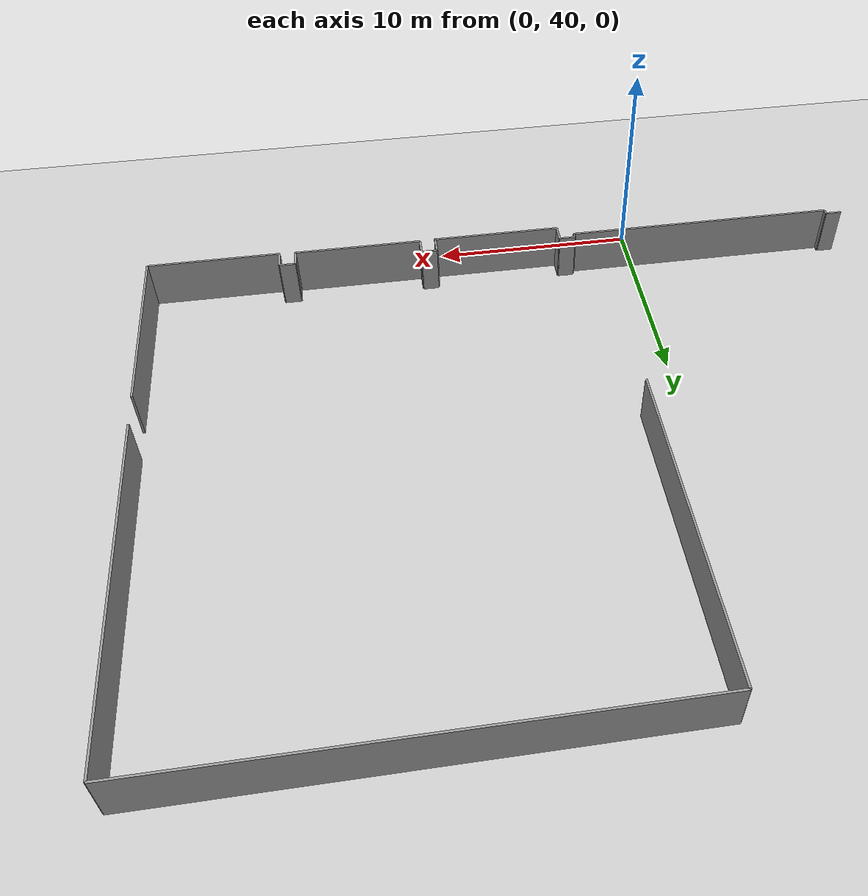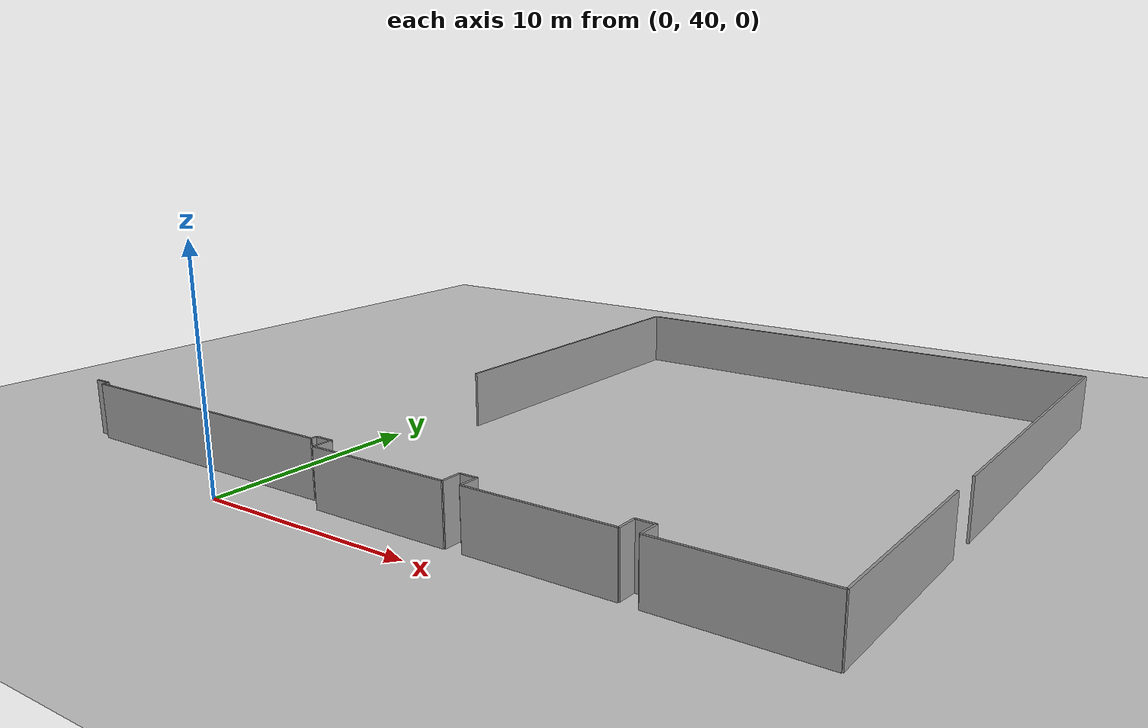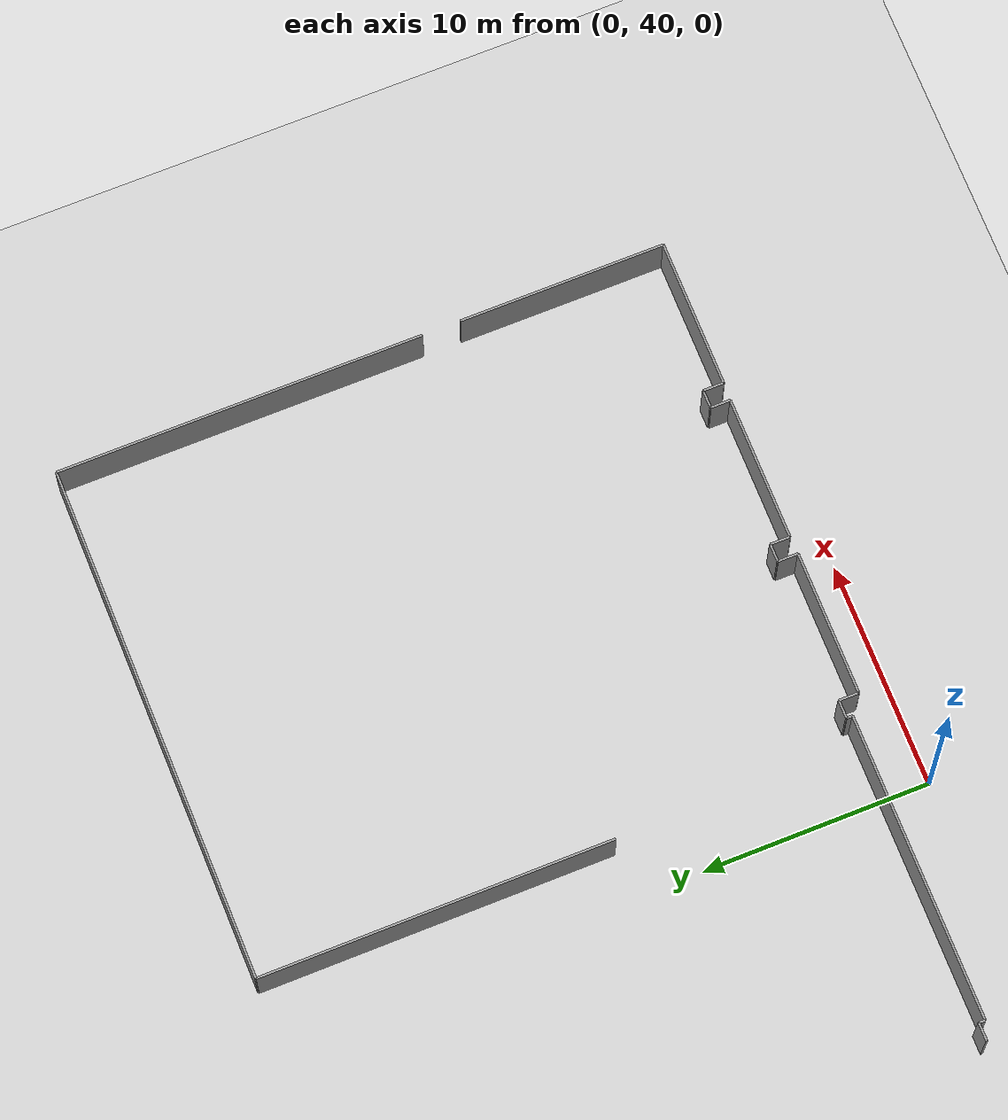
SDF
<sdf version="1.6">
 <world name="default">
  <model name="ground_plane">
   <static>1</static>
   <link name="link">
    <collision name="collision">
     <geometry><plane><normal>0 0 1</normal><size>100 100</size></plane></geometry>
     <surface><friction><ode><mu>100</mu><mu2>50</mu2></ode></friction></surface>
    </collision>
    <visual name="visual">
     <cast_shadows>0</cast_shadows>
     <geometry><plane><normal>0 0 1</normal><size>100 100</size></plane></geometry>
     <material>
      <script><uri>file://media/materials/scripts/gazebo.material</uri><name>Gazebo/Grey</name></script>
     </material>
    </visual>
   </link>
  </model>
  <model name="0510035518_A_40_1_101">
   <static>1</static>
   <link name="Wall_64">
    <collision name="Wall_64_Collision">
     <geometry><box><size>15.5447443633 0.1 2.5</size></box></geometry>
     <pose>7.77237218164 0 1.25 0 0 0</pose>
    </collision>
    <visual name="Wall_64_Visual">
     <pose>7.77237218164 0 1.25 0 0 0</pose>
     <geometry><box><size>15.5447443633 0.1 2.5</size></box></geometry>
     <material>
      <script><uri>file://media/materials/scripts/gazebo.material</uri><name>Gazebo/Grey</name></script>
      <ambient>1 1 1 1</ambient>
     </material>
    </visual>
    <pose>118.848142267 -15.5447443633 0 0 0 1.57079632679</pose>
   </link>
   <link name="Wall_65">
    <collision name="Wall_65_Collision">
     <geometry><box><size>23.0084471261 0.1 2.5</size></box></geometry>
     <pose>11.504223563 0 1.25 0 0 0</pose>
    </collision>
    <visual name="Wall_65_Visual">
     <pose>11.504223563 0 1.25 0 0 0</pose>
     <geometry><box><size>23.0084471261 0.1 2.5</size></box></geometry>
     <material>
      <script><uri>file://media/materials/scripts/gazebo.material</uri><name>Gazebo/Grey</name></script>
      <ambient>1 1 1 1</ambient>
     </material>
    </visual>
    <pose>118.848142267 -0.0 0 0 0 0.0</pose>
   </link>
   <link name="Wall_66">
    <collision name="Wall_66_Collision">
     <geometry><box><size>16.2210225468 0.1 2.5</size></box></geometry>
     <pose>8.11051127342 0 1.25 0 0 0</pose>
    </collision>
    <visual name="Wall_66_Visual">
     <pose>8.11051127342 0 1.25 0 0 0</pose>
     <geometry><box><size>16.2210225468 0.1 2.5</size></box></geometry>
     <material>
      <script><uri>file://media/materials/scripts/gazebo.material</uri><name>Gazebo/Grey</name></script>
      <ambient>1 1 1 1</ambient>
     </material>
    </visual>
    <pose>141.856589393 -0.0 0 0 0 -1.57079632679</pose>
   </link>
   <link name="Wall_67">
    <collision name="Wall_67_Collision">
     <geometry><box><size>9.12848523341 0.1 2.5</size></box></geometry>
     <pose>4.5642426167 0 1.25 0 0 0</pose>
    </collision>
    <visual name="Wall_67_Visual">
     <pose>4.5642426167 0 1.25 0 0 0</pose>
     <geometry><box><size>9.12848523341 0.1 2.5</size></box></geometry>
     <material>
      <script><uri>file://media/materials/scripts/gazebo.material</uri><name>Gazebo/Grey</name></script>
      <ambient>1 1 1 1</ambient>
     </material>
    </visual>
    <pose>141.856589393 -17.9122261035 0 0 0 -1.57079632679</pose>
   </link>
   <link name="Wall_68">
    <collision name="Wall_68_Collision">
     <geometry><box><size>6.59663385202 0.1 2.5</size></box></geometry>
     <pose>3.29831692601 0 1.25 0 0 0</pose>
    </collision>
    <visual name="Wall_68_Visual">
     <pose>3.29831692601 0 1.25 0 0 0</pose>
     <geometry><box><size>6.59663385202 0.1 2.5</size></box></geometry>
     <material>
      <script><uri>file://media/materials/scripts/gazebo.material</uri><name>Gazebo/Grey</name></script>
      <ambient>1 1 1 1</ambient>
     </material>
    </visual>
    <pose>141.856589393 -27.0407113369 0 0 0 3.14159265359</pose>
   </link>
   <link name="Wall_69">
    <collision name="Wall_69_Collision">
     <geometry><box><size>0.911527469038 0.1 2.5</size></box></geometry>
     <pose>0.455763734519 0 1.25 0 0 0</pose>
    </collision>
    <visual name="Wall_69_Visual">
     <pose>0.455763734519 0 1.25 0 0 0</pose>
     <geometry><box><size>0.911527469038 0.1 2.5</size></box></geometry>
     <material>
      <script><uri>file://media/materials/scripts/gazebo.material</uri><name>Gazebo/Grey</name></script>
      <ambient>1 1 1 1</ambient>
     </material>
    </visual>
    <pose>135.259955541 -27.0407113369 0 0 0 1.57079632679</pose>
   </link>
   <link name="Wall_70">
    <collision name="Wall_70_Collision">
     <geometry><box><size>0.801778342331 0.1 2.5</size></box></geometry>
     <pose>0.400889171165 0 1.25 0 0 0</pose>
    </collision>
    <visual name="Wall_70_Visual">
     <pose>0.400889171165 0 1.25 0 0 0</pose>
     <geometry><box><size>0.801778342331 0.1 2.5</size></box></geometry>
     <material>
      <script><uri>file://media/materials/scripts/gazebo.material</uri><name>Gazebo/Grey</name></script>
      <ambient>1 1 1 1</ambient>
     </material>
    </visual>
    <pose>135.259955541 -26.1291838679 0 0 0 3.14159265359</pose>
   </link>
   <link name="Wall_71">
    <collision name="Wall_71_Collision">
     <geometry><box><size>0.878501111464 0.1 2.5</size></box></geometry>
     <pose>0.439250555732 0 1.25 0 0 0</pose>
    </collision>
    <visual name="Wall_71_Visual">
     <pose>0.439250555732 0 1.25 0 0 0</pose>
     <geometry><box><size>0.878501111464 0.1 2.5</size></box></geometry>
     <material>
      <script><uri>file://media/materials/scripts/gazebo.material</uri><name>Gazebo/Grey</name></script>
      <ambient>1 1 1 1</ambient>
     </material>
    </visual>
    <pose>134.458177199 -26.1291838679 0 0 0 -1.57079632679</pose>
   </link>
   <link name="Wall_72">
    <collision name="Wall_72_Collision">
     <geometry><box><size>6.40330263576 0.1 2.5</size></box></geometry>
     <pose>3.20165131788 0 1.25 0 0 0</pose>
    </collision>
    <visual name="Wall_72_Visual">
     <pose>3.20165131788 0 1.25 0 0 0</pose>
     <geometry><box><size>6.40330263576 0.1 2.5</size></box></geometry>
     <material>
      <script><uri>file://media/materials/scripts/gazebo.material</uri><name>Gazebo/Grey</name></script>
      <ambient>1 1 1 1</ambient>
     </material>
    </visual>
    <pose>134.458177199 -27.0076849794 0 0 0 3.14159265359</pose>
   </link>
   <link name="Wall_73">
    <collision name="Wall_73_Collision">
     <geometry><box><size>0.867577008574 0.1 2.5</size></box></geometry>
     <pose>0.433788504287 0 1.25 0 0 0</pose>
    </collision>
    <visual name="Wall_73_Visual">
     <pose>0.433788504287 0 1.25 0 0 0</pose>
     <geometry><box><size>0.867577008574 0.1 2.5</size></box></geometry>
     <material>
      <script><uri>file://media/materials/scripts/gazebo.material</uri><name>Gazebo/Grey</name></script>
      <ambient>1 1 1 1</ambient>
     </material>
    </visual>
    <pose>128.054874563 -27.0076849794 0 0 0 1.57079632679</pose>
   </link>
   <link name="Wall_74">
    <collision name="Wall_74_Collision">
     <geometry><box><size>0.790600190537 0.1 2.5</size></box></geometry>
     <pose>0.395300095268 0 1.25 0 0 0</pose>
    </collision>
    <visual name="Wall_74_Visual">
     <pose>0.395300095268 0 1.25 0 0 0</pose>
     <geometry><box><size>0.790600190537 0.1 2.5</size></box></geometry>
     <material>
      <script><uri>file://media/materials/scripts/gazebo.material</uri><name>Gazebo/Grey</name></script>
      <ambient>1 1 1 1</ambient>
     </material>
    </visual>
    <pose>128.054874563 -26.1401079708 0 0 0 3.14159265359</pose>
   </link>
   <link name="Wall_75">
    <collision name="Wall_75_Collision">
     <geometry><box><size>0.900603366148 0.1 2.5</size></box></geometry>
     <pose>0.450301683074 0 1.25 0 0 0</pose>
    </collision>
    <visual name="Wall_75_Visual">
     <pose>0.450301683074 0 1.25 0 0 0</pose>
     <geometry><box><size>0.900603366148 0.1 2.5</size></box></geometry>
     <material>
      <script><uri>file://media/materials/scripts/gazebo.material</uri><name>Gazebo/Grey</name></script>
      <ambient>1 1 1 1</ambient>
     </material>
    </visual>
    <pose>127.264274373 -26.1401079708 0 0 0 -1.57079632679</pose>
   </link>
   <link name="Wall_76">
    <collision name="Wall_76_Collision">
     <geometry><box><size>6.40152429343 0.1 2.5</size></box></geometry>
     <pose>3.20076214671 0 1.25 0 0 0</pose>
    </collision>
    <visual name="Wall_76_Visual">
     <pose>3.20076214671 0 1.25 0 0 0</pose>
     <geometry><box><size>6.40152429343 0.1 2.5</size></box></geometry>
     <material>
      <script><uri>file://media/materials/scripts/gazebo.material</uri><name>Gazebo/Grey</name></script>
      <ambient>1 1 1 1</ambient>
     </material>
    </visual>
    <pose>127.264274373 -27.0407113369 0 0 0 3.14159265359</pose>
   </link>
   <link name="Wall_77">
    <collision name="Wall_77_Collision">
     <geometry><box><size>0.87824706256 0.1 2.5</size></box></geometry>
     <pose>0.43912353128 0 1.25 0 0 0</pose>
    </collision>
    <visual name="Wall_77_Visual">
     <pose>0.43912353128 0 1.25 0 0 0</pose>
     <geometry><box><size>0.87824706256 0.1 2.5</size></box></geometry>
     <material>
      <script><uri>file://media/materials/scripts/gazebo.material</uri><name>Gazebo/Grey</name></script>
      <ambient>1 1 1 1</ambient>
     </material>
    </visual>
    <pose>120.862750079 -27.0407113369 0 0 0 1.57079632679</pose>
   </link>
   <link name="Wall_78">
    <collision name="Wall_78_Collision">
     <geometry><box><size>0.802032391235 0.1 2.5</size></box></geometry>
     <pose>0.401016195618 0 1.25 0 0 0</pose>
    </collision>
    <visual name="Wall_78_Visual">
     <pose>0.401016195618 0 1.25 0 0 0</pose>
     <geometry><box><size>0.802032391235 0.1 2.5</size></box></geometry>
     <material>
      <script><uri>file://media/materials/scripts/gazebo.material</uri><name>Gazebo/Grey</name></script>
      <ambient>1 1 1 1</ambient>
     </material>
    </visual>
    <pose>120.862750079 -26.1624642744 0 0 0 3.14159265359</pose>
   </link>
   <link name="Wall_79">
    <collision name="Wall_79_Collision">
     <geometry><box><size>0.267513496348 0.1 2.5</size></box></geometry>
     <pose>0.133756748174 0 1.25 0 0 0</pose>
    </collision>
    <visual name="Wall_79_Visual">
     <pose>0.133756748174 0 1.25 0 0 0</pose>
     <geometry><box><size>0.267513496348 0.1 2.5</size></box></geometry>
     <material>
      <script><uri>file://media/materials/scripts/gazebo.material</uri><name>Gazebo/Grey</name></script>
      <ambient>1 1 1 1</ambient>
     </material>
    </visual>
    <pose>120.060717688 -26.1624642744 0 0 0 -1.57079632679</pose>
   </link>
   <link name="Wall_80">
    <collision name="Wall_80_Collision">
     <geometry><box><size>13.6109241029 0.1 2.5</size></box></geometry>
     <pose>6.80546205144 0 1.25 0 0 0</pose>
    </collision>
    <visual name="Wall_80_Visual">
     <pose>6.80546205144 0 1.25 0 0 0</pose>
     <geometry><box><size>13.6109241029 0.1 2.5</size></box></geometry>
     <material>
      <script><uri>file://media/materials/scripts/gazebo.material</uri><name>Gazebo/Grey</name></script>
      <ambient>1 1 1 1</ambient>
     </material>
    </visual>
    <pose>120.060717688 -26.4299777707 0 0 0 3.14159265359</pose>
   </link>
   <link name="Wall_81">
    <collision name="Wall_81_Collision">
     <geometry><box><size>0.272594474436 0.1 2.5</size></box></geometry>
     <pose>0.136297237218 0 1.25 0 0 0</pose>
    </collision>
    <visual name="Wall_81_Visual">
     <pose>0.136297237218 0 1.25 0 0 0</pose>
     <geometry><box><size>0.272594474436 0.1 2.5</size></box></geometry>
     <material>
      <script><uri>file://media/materials/scripts/gazebo.material</uri><name>Gazebo/Grey</name></script>
      <ambient>1 1 1 1</ambient>
     </material>
    </visual>
    <pose>106.449793585 -26.4299777707 0 0 0 1.57079632679</pose>
   </link>
   <link name="Wall_82">
    <collision name="Wall_82_Collision">
     <geometry><box><size>0.803810733566 0.1 2.5</size></box></geometry>
     <pose>0.401905366783 0 1.25 0 0 0</pose>
    </collision>
    <visual name="Wall_82_Visual">
     <pose>0.401905366783 0 1.25 0 0 0</pose>
     <geometry><box><size>0.803810733566 0.1 2.5</size></box></geometry>
     <material>
      <script><uri>file://media/materials/scripts/gazebo.material</uri><name>Gazebo/Grey</name></script>
      <ambient>1 1 1 1</ambient>
     </material>
    </visual>
    <pose>106.449793585 -26.1573832963 0 0 0 3.14159265359</pose>
   </link>
   <pose>-116.8 68.630612893 0 0 0 0</pose>
  </model>
 </world>
</sdf>
